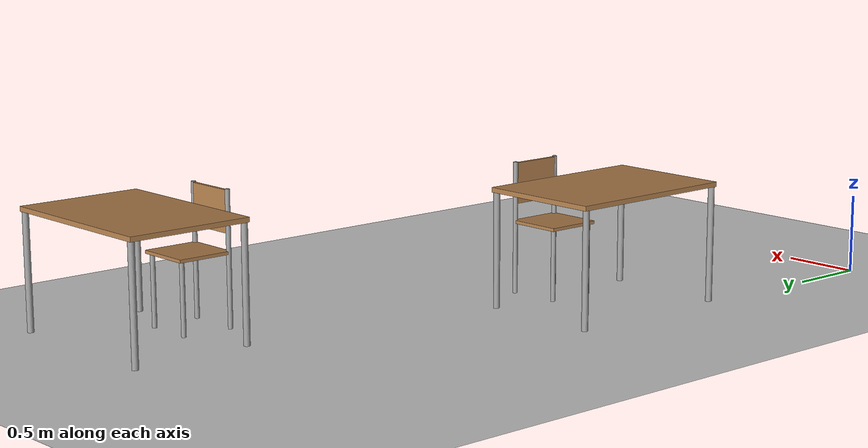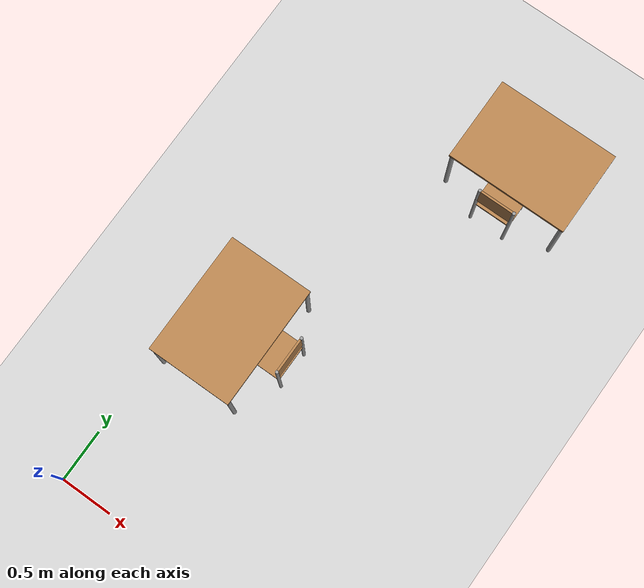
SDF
<sdf version="1.7">
 <world name="default">
  <model name="ground_plane">
   <static>1</static>
   <link name="link">
    <collision name="collision">
     <geometry><plane><normal>0 0 1</normal><size>100 100</size></plane></geometry>
     <surface>
      <contact><collide_bitmask>65535</collide_bitmask></contact>
      <friction><ode><mu>100</mu><mu2>50</mu2></ode></friction>
     </surface>
    </collision>
    <visual name="visual">
     <cast_shadows>0</cast_shadows>
     <geometry><plane><normal>0 0 1</normal><size>100 100</size></plane></geometry>
     <material>
      <script><uri>file://media/materials/scripts/gazebo.material</uri><name>Gazebo/Grey</name></script>
     </material>
    </visual>
   </link>
  </model>
  <model name="table_mod_clone">
   <link name="link">
    <inertial>
     <mass>1</mass>
     <inertia><ixx>1</ixx><ixy>0</ixy><ixz>0</ixz><iyy>1</iyy><iyz>0</iyz><izz>1</izz></inertia>
    </inertial>
    <visual name="visual1">
     <pose>0 0 0.87 0 -0 0</pose>
     <geometry><box><size>1.15 0.8 0.03</size></box></geometry>
     <material>
      <script><uri>file://media/materials/scripts/gazebo.material</uri><name>Gazebo/Wood</name></script>
      <shader type="pixel"><normal_map>__default__</normal_map></shader>
      <ambient>1 1 1 1</ambient>
      <diffuse>1 1 1 1</diffuse>
      <specular>0.2 0.2 0.2 1</specular>
      <emissive>0 0 0 1</emissive>
     </material>
    </visual>
    <visual name="back_right_leg">
     <pose>-0.55 -0.38 0.5 0 -0 0</pose>
     <geometry><cylinder><radius>0.02</radius><length>0.75</length></cylinder></geometry>
     <material>
      <script><uri>file://media/materials/scripts/gazebo.material</uri><name>Gazebo/Grey</name></script>
      <shader type="pixel"><normal_map>__default__</normal_map></shader>
      <ambient>0.3 0.3 0.3 1</ambient>
      <diffuse>0.7 0.7 0.7 1</diffuse>
      <specular>0.01 0.01 0.01 1</specular>
      <emissive>0 0 0 1</emissive>
     </material>
    </visual>
    <visual name="front_right_leg">
     <pose>0.55 -0.38 0.5 0 -0 0</pose>
     <geometry><cylinder><radius>0.02</radius><length>0.75</length></cylinder></geometry>
     <material>
      <script><uri>file://media/materials/scripts/gazebo.material</uri><name>Gazebo/Grey</name></script>
      <shader type="pixel"><normal_map>__default__</normal_map></shader>
      <ambient>0.3 0.3 0.3 1</ambient>
      <diffuse>0.7 0.7 0.7 1</diffuse>
      <specular>0.01 0.01 0.01 1</specular>
      <emissive>0 0 0 1</emissive>
     </material>
    </visual>
    <visual name="back_left_leg">
     <pose>-0.55 0.38 0.5 0 -0 0</pose>
     <geometry><cylinder><radius>0.02</radius><length>0.75</length></cylinder></geometry>
     <material>
      <script><uri>file://media/materials/scripts/gazebo.material</uri><name>Gazebo/Grey</name></script>
      <shader type="pixel"><normal_map>__default__</normal_map></shader>
      <ambient>0.3 0.3 0.3 1</ambient>
      <diffuse>0.7 0.7 0.7 1</diffuse>
      <specular>0.01 0.01 0.01 1</specular>
      <emissive>0 0 0 1</emissive>
     </material>
    </visual>
    <visual name="front_left_leg">
     <pose>0.55 0.38 0.5 0 -0 0</pose>
     <geometry><cylinder><radius>0.02</radius><length>0.75</length></cylinder></geometry>
     <material>
      <script><uri>file://media/materials/scripts/gazebo.material</uri><name>Gazebo/Grey</name></script>
      <shader type="pixel"><normal_map>__default__</normal_map></shader>
      <ambient>0.3 0.3 0.3 1</ambient>
      <diffuse>0.7 0.7 0.7 1</diffuse>
      <specular>0.01 0.01 0.01 1</specular>
      <emissive>0 0 0 1</emissive>
     </material>
    </visual>
    <collision name="surface">
     <pose>0 0 0.87 0 -0 0</pose>
     <geometry><box><size>1.15 0.8 0.03</size></box></geometry>
     <surface>
      <friction>
       <ode><mu>0.6</mu><mu2>0.6</mu2><fdir1>0 0 0</fdir1><slip1>0</slip1><slip2>0</slip2></ode>
       <torsional>
        <coefficient>1</coefficient>
        <patch_radius>0</patch_radius>
        <surface_radius>0</surface_radius>
        <use_patch_radius>1</use_patch_radius>
        <ode><slip>0</slip></ode>
       </torsional>
      </friction>
      <bounce><restitution_coefficient>0</restitution_coefficient><threshold>1e+06</threshold></bounce>
      <contact>
       <collide_without_contact>0</collide_without_contact>
       <collide_without_contact_bitmask>1</collide_without_contact_bitmask>
       <collide_bitmask>1</collide_bitmask>
       <ode>
        <soft_cfm>0</soft_cfm>
        <soft_erp>0.2</soft_erp>
        <kp>1e+13</kp>
        <kd>1</kd>
        <max_vel>0.01</max_vel>
        <min_depth>0</min_depth>
       </ode>
       <bullet>
        <split_impulse>1</split_impulse>
        <split_impulse_penetration_threshold>-0.01</split_impulse_penetration_threshold>
        <soft_cfm>0</soft_cfm>
        <soft_erp>0.2</soft_erp>
        <kp>1e+13</kp>
        <kd>1</kd>
       </bullet>
      </contact>
     </surface>
    </collision>
    <collision name="back_right_leg">
     <pose>-0.55 -0.38 0.5 0 -0 0</pose>
     <geometry><cylinder><radius>0.02</radius><length>0.75</length></cylinder></geometry>
     <surface>
      <friction>
       <ode><mu>1</mu><mu2>1</mu2><fdir1>0 0 0</fdir1><slip1>0</slip1><slip2>0</slip2></ode>
       <torsional>
        <coefficient>1</coefficient>
        <patch_radius>0</patch_radius>
        <surface_radius>0</surface_radius>
        <use_patch_radius>1</use_patch_radius>
        <ode><slip>0</slip></ode>
       </torsional>
      </friction>
      <bounce><restitution_coefficient>0</restitution_coefficient><threshold>1e+06</threshold></bounce>
      <contact>
       <collide_without_contact>0</collide_without_contact>
       <collide_without_contact_bitmask>1</collide_without_contact_bitmask>
       <collide_bitmask>1</collide_bitmask>
       <ode>
        <soft_cfm>0</soft_cfm>
        <soft_erp>0.2</soft_erp>
        <kp>1e+13</kp>
        <kd>1</kd>
        <max_vel>0.01</max_vel>
        <min_depth>0</min_depth>
       </ode>
       <bullet>
        <split_impulse>1</split_impulse>
        <split_impulse_penetration_threshold>-0.01</split_impulse_penetration_threshold>
        <soft_cfm>0</soft_cfm>
        <soft_erp>0.2</soft_erp>
        <kp>1e+13</kp>
        <kd>1</kd>
       </bullet>
      </contact>
     </surface>
    </collision>
    <collision name="back_left_leg">
     <pose>-0.55 0.38 0.5 0 -0 0</pose>
     <geometry><cylinder><radius>0.02</radius><length>0.75</length></cylinder></geometry>
     <surface>
      <friction>
       <ode><mu>1</mu><mu2>1</mu2><fdir1>0 0 0</fdir1><slip1>0</slip1><slip2>0</slip2></ode>
       <torsional>
        <coefficient>1</coefficient>
        <patch_radius>0</patch_radius>
        <surface_radius>0</surface_radius>
        <use_patch_radius>1</use_patch_radius>
        <ode><slip>0</slip></ode>
       </torsional>
      </friction>
      <bounce><restitution_coefficient>0</restitution_coefficient><threshold>1e+06</threshold></bounce>
      <contact>
       <collide_without_contact>0</collide_without_contact>
       <collide_without_contact_bitmask>1</collide_without_contact_bitmask>
       <collide_bitmask>1</collide_bitmask>
       <ode>
        <soft_cfm>0</soft_cfm>
        <soft_erp>0.2</soft_erp>
        <kp>1e+13</kp>
        <kd>1</kd>
        <max_vel>0.01</max_vel>
        <min_depth>0</min_depth>
       </ode>
       <bullet>
        <split_impulse>1</split_impulse>
        <split_impulse_penetration_threshold>-0.01</split_impulse_penetration_threshold>
        <soft_cfm>0</soft_cfm>
        <soft_erp>0.2</soft_erp>
        <kp>1e+13</kp>
        <kd>1</kd>
       </bullet>
      </contact>
     </surface>
    </collision>
    <collision name="front_left_leg">
     <pose>0.55 0.38 0.5 0 -0 0</pose>
     <geometry><cylinder><radius>0.02</radius><length>0.75</length></cylinder></geometry>
     <surface>
      <friction>
       <ode><mu>1</mu><mu2>1</mu2><fdir1>0 0 0</fdir1><slip1>0</slip1><slip2>0</slip2></ode>
       <torsional>
        <coefficient>1</coefficient>
        <patch_radius>0</patch_radius>
        <surface_radius>0</surface_radius>
        <use_patch_radius>1</use_patch_radius>
        <ode><slip>0</slip></ode>
       </torsional>
      </friction>
      <bounce><restitution_coefficient>0</restitution_coefficient><threshold>1e+06</threshold></bounce>
      <contact>
       <collide_without_contact>0</collide_without_contact>
       <collide_without_contact_bitmask>1</collide_without_contact_bitmask>
       <collide_bitmask>1</collide_bitmask>
       <ode>
        <soft_cfm>0</soft_cfm>
        <soft_erp>0.2</soft_erp>
        <kp>1e+13</kp>
        <kd>1</kd>
        <max_vel>0.01</max_vel>
        <min_depth>0</min_depth>
       </ode>
       <bullet>
        <split_impulse>1</split_impulse>
        <split_impulse_penetration_threshold>-0.01</split_impulse_penetration_threshold>
        <soft_cfm>0</soft_cfm>
        <soft_erp>0.2</soft_erp>
        <kp>1e+13</kp>
        <kd>1</kd>
       </bullet>
      </contact>
     </surface>
    </collision>
    <collision name="front_right_leg">
     <pose>0.55 -0.38 0.5 0 -0 0</pose>
     <geometry><cylinder><radius>0.02</radius><length>0.75</length></cylinder></geometry>
     <surface>
      <friction>
       <ode><mu>1</mu><mu2>1</mu2><fdir1>0 0 0</fdir1><slip1>0</slip1><slip2>0</slip2></ode>
       <torsional>
        <coefficient>1</coefficient>
        <patch_radius>0</patch_radius>
        <surface_radius>0</surface_radius>
        <use_patch_radius>1</use_patch_radius>
        <ode><slip>0</slip></ode>
       </torsional>
      </friction>
      <bounce><restitution_coefficient>0</restitution_coefficient><threshold>1e+06</threshold></bounce>
      <contact>
       <collide_without_contact>0</collide_without_contact>
       <collide_without_contact_bitmask>1</collide_without_contact_bitmask>
       <collide_bitmask>1</collide_bitmask>
       <ode>
        <soft_cfm>0</soft_cfm>
        <soft_erp>0.2</soft_erp>
        <kp>1e+13</kp>
        <kd>1</kd>
        <max_vel>0.01</max_vel>
        <min_depth>0</min_depth>
       </ode>
       <bullet>
        <split_impulse>1</split_impulse>
        <split_impulse_penetration_threshold>-0.01</split_impulse_penetration_threshold>
        <soft_cfm>0</soft_cfm>
        <soft_erp>0.2</soft_erp>
        <kp>1e+13</kp>
        <kd>1</kd>
       </bullet>
      </contact>
     </surface>
    </collision>
   </link>
   <static>1</static>
   <pose>0.469024 1.86683 -0.134214 0 0 -1.5708</pose>
  </model>
  <model name="table_mod_clone_0">
   <link name="link">
    <inertial>
     <mass>1</mass>
     <inertia><ixx>1</ixx><ixy>0</ixy><ixz>0</ixz><iyy>1</iyy><iyz>0</iyz><izz>1</izz></inertia>
    </inertial>
    <visual name="visual1">
     <pose>0 0 0.87 0 -0 0</pose>
     <geometry><box><size>1.15 0.8 0.03</size></box></geometry>
     <material>
      <script><uri>file://media/materials/scripts/gazebo.material</uri><name>Gazebo/Wood</name></script>
      <shader type="pixel"><normal_map>__default__</normal_map></shader>
      <ambient>1 1 1 1</ambient>
      <diffuse>1 1 1 1</diffuse>
      <specular>0.2 0.2 0.2 1</specular>
      <emissive>0 0 0 1</emissive>
     </material>
    </visual>
    <visual name="back_right_leg">
     <pose>-0.55 -0.38 0.5 0 -0 0</pose>
     <geometry><cylinder><radius>0.02</radius><length>0.75</length></cylinder></geometry>
     <material>
      <script><uri>file://media/materials/scripts/gazebo.material</uri><name>Gazebo/Grey</name></script>
      <shader type="pixel"><normal_map>__default__</normal_map></shader>
      <ambient>0.3 0.3 0.3 1</ambient>
      <diffuse>0.7 0.7 0.7 1</diffuse>
      <specular>0.01 0.01 0.01 1</specular>
      <emissive>0 0 0 1</emissive>
     </material>
    </visual>
    <visual name="front_right_leg">
     <pose>0.55 -0.38 0.5 0 -0 0</pose>
     <geometry><cylinder><radius>0.02</radius><length>0.75</length></cylinder></geometry>
     <material>
      <script><uri>file://media/materials/scripts/gazebo.material</uri><name>Gazebo/Grey</name></script>
      <shader type="pixel"><normal_map>__default__</normal_map></shader>
      <ambient>0.3 0.3 0.3 1</ambient>
      <diffuse>0.7 0.7 0.7 1</diffuse>
      <specular>0.01 0.01 0.01 1</specular>
      <emissive>0 0 0 1</emissive>
     </material>
    </visual>
    <visual name="back_left_leg">
     <pose>-0.55 0.38 0.5 0 -0 0</pose>
     <geometry><cylinder><radius>0.02</radius><length>0.75</length></cylinder></geometry>
     <material>
      <script><uri>file://media/materials/scripts/gazebo.material</uri><name>Gazebo/Grey</name></script>
      <shader type="pixel"><normal_map>__default__</normal_map></shader>
      <ambient>0.3 0.3 0.3 1</ambient>
      <diffuse>0.7 0.7 0.7 1</diffuse>
      <specular>0.01 0.01 0.01 1</specular>
      <emissive>0 0 0 1</emissive>
     </material>
    </visual>
    <visual name="front_left_leg">
     <pose>0.55 0.38 0.5 0 -0 0</pose>
     <geometry><cylinder><radius>0.02</radius><length>0.75</length></cylinder></geometry>
     <material>
      <script><uri>file://media/materials/scripts/gazebo.material</uri><name>Gazebo/Grey</name></script>
      <shader type="pixel"><normal_map>__default__</normal_map></shader>
      <ambient>0.3 0.3 0.3 1</ambient>
      <diffuse>0.7 0.7 0.7 1</diffuse>
      <specular>0.01 0.01 0.01 1</specular>
      <emissive>0 0 0 1</emissive>
     </material>
    </visual>
    <collision name="surface">
     <pose>0 0 0.87 0 -0 0</pose>
     <geometry><box><size>1.15 0.8 0.03</size></box></geometry>
     <surface>
      <friction>
       <ode><mu>0.6</mu><mu2>0.6</mu2><fdir1>0 0 0</fdir1><slip1>0</slip1><slip2>0</slip2></ode>
       <torsional>
        <coefficient>1</coefficient>
        <patch_radius>0</patch_radius>
        <surface_radius>0</surface_radius>
        <use_patch_radius>1</use_patch_radius>
        <ode><slip>0</slip></ode>
       </torsional>
      </friction>
      <bounce><restitution_coefficient>0</restitution_coefficient><threshold>1e+06</threshold></bounce>
      <contact>
       <collide_without_contact>0</collide_without_contact>
       <collide_without_contact_bitmask>1</collide_without_contact_bitmask>
       <collide_bitmask>1</collide_bitmask>
       <ode>
        <soft_cfm>0</soft_cfm>
        <soft_erp>0.2</soft_erp>
        <kp>1e+13</kp>
        <kd>1</kd>
        <max_vel>0.01</max_vel>
        <min_depth>0</min_depth>
       </ode>
       <bullet>
        <split_impulse>1</split_impulse>
        <split_impulse_penetration_threshold>-0.01</split_impulse_penetration_threshold>
        <soft_cfm>0</soft_cfm>
        <soft_erp>0.2</soft_erp>
        <kp>1e+13</kp>
        <kd>1</kd>
       </bullet>
      </contact>
     </surface>
    </collision>
    <collision name="back_right_leg">
     <pose>-0.55 -0.38 0.5 0 -0 0</pose>
     <geometry><cylinder><radius>0.02</radius><length>0.75</length></cylinder></geometry>
     <surface>
      <friction>
       <ode><mu>1</mu><mu2>1</mu2><fdir1>0 0 0</fdir1><slip1>0</slip1><slip2>0</slip2></ode>
       <torsional>
        <coefficient>1</coefficient>
        <patch_radius>0</patch_radius>
        <surface_radius>0</surface_radius>
        <use_patch_radius>1</use_patch_radius>
        <ode><slip>0</slip></ode>
       </torsional>
      </friction>
      <bounce><restitution_coefficient>0</restitution_coefficient><threshold>1e+06</threshold></bounce>
      <contact>
       <collide_without_contact>0</collide_without_contact>
       <collide_without_contact_bitmask>1</collide_without_contact_bitmask>
       <collide_bitmask>1</collide_bitmask>
       <ode>
        <soft_cfm>0</soft_cfm>
        <soft_erp>0.2</soft_erp>
        <kp>1e+13</kp>
        <kd>1</kd>
        <max_vel>0.01</max_vel>
        <min_depth>0</min_depth>
       </ode>
       <bullet>
        <split_impulse>1</split_impulse>
        <split_impulse_penetration_threshold>-0.01</split_impulse_penetration_threshold>
        <soft_cfm>0</soft_cfm>
        <soft_erp>0.2</soft_erp>
        <kp>1e+13</kp>
        <kd>1</kd>
       </bullet>
      </contact>
     </surface>
    </collision>
    <collision name="back_left_leg">
     <pose>-0.55 0.38 0.5 0 -0 0</pose>
     <geometry><cylinder><radius>0.02</radius><length>0.75</length></cylinder></geometry>
     <surface>
      <friction>
       <ode><mu>1</mu><mu2>1</mu2><fdir1>0 0 0</fdir1><slip1>0</slip1><slip2>0</slip2></ode>
       <torsional>
        <coefficient>1</coefficient>
        <patch_radius>0</patch_radius>
        <surface_radius>0</surface_radius>
        <use_patch_radius>1</use_patch_radius>
        <ode><slip>0</slip></ode>
       </torsional>
      </friction>
      <bounce><restitution_coefficient>0</restitution_coefficient><threshold>1e+06</threshold></bounce>
      <contact>
       <collide_without_contact>0</collide_without_contact>
       <collide_without_contact_bitmask>1</collide_without_contact_bitmask>
       <collide_bitmask>1</collide_bitmask>
       <ode>
        <soft_cfm>0</soft_cfm>
        <soft_erp>0.2</soft_erp>
        <kp>1e+13</kp>
        <kd>1</kd>
        <max_vel>0.01</max_vel>
        <min_depth>0</min_depth>
       </ode>
       <bullet>
        <split_impulse>1</split_impulse>
        <split_impulse_penetration_threshold>-0.01</split_impulse_penetration_threshold>
        <soft_cfm>0</soft_cfm>
        <soft_erp>0.2</soft_erp>
        <kp>1e+13</kp>
        <kd>1</kd>
       </bullet>
      </contact>
     </surface>
    </collision>
    <collision name="front_left_leg">
     <pose>0.55 0.38 0.5 0 -0 0</pose>
     <geometry><cylinder><radius>0.02</radius><length>0.75</length></cylinder></geometry>
     <surface>
      <friction>
       <ode><mu>1</mu><mu2>1</mu2><fdir1>0 0 0</fdir1><slip1>0</slip1><slip2>0</slip2></ode>
       <torsional>
        <coefficient>1</coefficient>
        <patch_radius>0</patch_radius>
        <surface_radius>0</surface_radius>
        <use_patch_radius>1</use_patch_radius>
        <ode><slip>0</slip></ode>
       </torsional>
      </friction>
      <bounce><restitution_coefficient>0</restitution_coefficient><threshold>1e+06</threshold></bounce>
      <contact>
       <collide_without_contact>0</collide_without_contact>
       <collide_without_contact_bitmask>1</collide_without_contact_bitmask>
       <collide_bitmask>1</collide_bitmask>
       <ode>
        <soft_cfm>0</soft_cfm>
        <soft_erp>0.2</soft_erp>
        <kp>1e+13</kp>
        <kd>1</kd>
        <max_vel>0.01</max_vel>
        <min_depth>0</min_depth>
       </ode>
       <bullet>
        <split_impulse>1</split_impulse>
        <split_impulse_penetration_threshold>-0.01</split_impulse_penetration_threshold>
        <soft_cfm>0</soft_cfm>
        <soft_erp>0.2</soft_erp>
        <kp>1e+13</kp>
        <kd>1</kd>
       </bullet>
      </contact>
     </surface>
    </collision>
    <collision name="front_right_leg">
     <pose>0.55 -0.38 0.5 0 -0 0</pose>
     <geometry><cylinder><radius>0.02</radius><length>0.75</length></cylinder></geometry>
     <surface>
      <friction>
       <ode><mu>1</mu><mu2>1</mu2><fdir1>0 0 0</fdir1><slip1>0</slip1><slip2>0</slip2></ode>
       <torsional>
        <coefficient>1</coefficient>
        <patch_radius>0</patch_radius>
        <surface_radius>0</surface_radius>
        <use_patch_radius>1</use_patch_radius>
        <ode><slip>0</slip></ode>
       </torsional>
      </friction>
      <bounce><restitution_coefficient>0</restitution_coefficient><threshold>1e+06</threshold></bounce>
      <contact>
       <collide_without_contact>0</collide_without_contact>
       <collide_without_contact_bitmask>1</collide_without_contact_bitmask>
       <collide_bitmask>1</collide_bitmask>
       <ode>
        <soft_cfm>0</soft_cfm>
        <soft_erp>0.2</soft_erp>
        <kp>1e+13</kp>
        <kd>1</kd>
        <max_vel>0.01</max_vel>
        <min_depth>0</min_depth>
       </ode>
       <bullet>
        <split_impulse>1</split_impulse>
        <split_impulse_penetration_threshold>-0.01</split_impulse_penetration_threshold>
        <soft_cfm>0</soft_cfm>
        <soft_erp>0.2</soft_erp>
        <kp>1e+13</kp>
        <kd>1</kd>
       </bullet>
      </contact>
     </surface>
    </collision>
   </link>
   <static>1</static>
   <pose>1.7084 4.46917 -0.134214 0 0 -4e-06</pose>
  </model>
  <model name="chair_mod_0">
   <link name="link">
    <inertial>
     <mass>1</mass>
     <inertia><ixx>1</ixx><ixy>0</ixy><ixz>0</ixz><iyy>1</iyy><iyz>0</iyz><izz>1</izz></inertia>
    </inertial>
    <visual name="back_right_leg">
     <pose>-0.17 -0.17 0.42 0 -0 0</pose>
     <geometry><cylinder><radius>0.015</radius><length>0.84</length></cylinder></geometry>
     <material>
      <script><uri>file://media/materials/scripts/gazebo.material</uri><name>Gazebo/Grey</name></script>
      <shader type="pixel"><normal_map>__default__</normal_map></shader>
      <ambient>0.3 0.3 0.3 1</ambient>
      <diffuse>0.7 0.7 0.7 1</diffuse>
      <specular>0.01 0.01 0.01 1</specular>
      <emissive>0 0 0 1</emissive>
     </material>
    </visual>
    <visual name="back_left_leg">
     <pose>-0.15 0.15 0.23 0 -0 0</pose>
     <geometry><cylinder><radius>0.015</radius><length>0.46</length></cylinder></geometry>
     <material>
      <script><uri>file://media/materials/scripts/gazebo.material</uri><name>Gazebo/Grey</name></script>
      <shader type="pixel"><normal_map>__default__</normal_map></shader>
      <ambient>0.3 0.3 0.3 1</ambient>
      <diffuse>0.7 0.7 0.7 1</diffuse>
      <specular>0.01 0.01 0.01 1</specular>
      <emissive>0 0 0 1</emissive>
     </material>
    </visual>
    <visual name="visual1">
     <pose>0 0 0.46 0 -0 0</pose>
     <geometry><box><size>0.36 0.36 0.02</size></box></geometry>
     <material>
      <script><uri>file://media/materials/scripts/gazebo.material</uri><name>Gazebo/Wood</name></script>
      <shader type="pixel"><normal_map>__default__</normal_map></shader>
      <ambient>1 1 1 1</ambient>
      <diffuse>1 1 1 1</diffuse>
      <specular>0.2 0.2 0.2 1</specular>
      <emissive>0 0 0 1</emissive>
     </material>
    </visual>
    <visual name="ModelPreview_1::link::visual_5">
     <pose>0 -0.17 0.705 1.56 -0 0</pose>
     <geometry><box><size>0.36 0.26 0.02</size></box></geometry>
     <material>
      <script><uri>file://media/materials/scripts/gazebo.material</uri><name>Gazebo/Wood</name></script>
      <shader type="pixel"><normal_map>__default__</normal_map></shader>
      <ambient>1 1 1 1</ambient>
      <diffuse>1 1 1 1</diffuse>
      <specular>0.2 0.2 0.2 1</specular>
      <emissive>0 0 0 1</emissive>
     </material>
    </visual>
    <visual name="front_left_leg">
     <pose>0.15 0.15 0.23 0 -0 0</pose>
     <geometry><cylinder><radius>0.015</radius><length>0.46</length></cylinder></geometry>
     <material>
      <script><uri>file://media/materials/scripts/gazebo.material</uri><name>Gazebo/Grey</name></script>
      <shader type="pixel"><normal_map>__default__</normal_map></shader>
      <ambient>0.3 0.3 0.3 1</ambient>
      <diffuse>0.7 0.7 0.7 1</diffuse>
      <specular>0.01 0.01 0.01 1</specular>
      <emissive>0 0 0 1</emissive>
     </material>
    </visual>
    <visual name="front_right_leg">
     <pose>0.17 -0.17 0.42 0 -0 0</pose>
     <geometry><cylinder><radius>0.015</radius><length>0.84</length></cylinder></geometry>
     <material>
      <script><uri>file://media/materials/scripts/gazebo.material</uri><name>Gazebo/Grey</name></script>
      <shader type="pixel"><normal_map>__default__</normal_map></shader>
      <ambient>0.3 0.3 0.3 1</ambient>
      <diffuse>0.7 0.7 0.7 1</diffuse>
      <specular>0.01 0.01 0.01 1</specular>
      <emissive>0 0 0 1</emissive>
     </material>
    </visual>
    <collision name="front_right_leg">
     <pose>0.17 -0.17 0.42 0 -0 0</pose>
     <geometry><cylinder><radius>0.015</radius><length>0.84</length></cylinder></geometry>
     <surface>
      <friction>
       <ode><mu>1</mu><mu2>1</mu2><fdir1>0 0 0</fdir1><slip1>0</slip1><slip2>0</slip2></ode>
       <torsional>
        <coefficient>1</coefficient>
        <patch_radius>0</patch_radius>
        <surface_radius>0</surface_radius>
        <use_patch_radius>1</use_patch_radius>
        <ode><slip>0</slip></ode>
       </torsional>
      </friction>
      <bounce><restitution_coefficient>0</restitution_coefficient><threshold>1e+06</threshold></bounce>
      <contact>
       <collide_without_contact>0</collide_without_contact>
       <collide_without_contact_bitmask>1</collide_without_contact_bitmask>
       <collide_bitmask>1</collide_bitmask>
       <ode>
        <soft_cfm>0</soft_cfm>
        <soft_erp>0.2</soft_erp>
        <kp>1e+13</kp>
        <kd>1</kd>
        <max_vel>0.01</max_vel>
        <min_depth>0</min_depth>
       </ode>
       <bullet>
        <split_impulse>1</split_impulse>
        <split_impulse_penetration_threshold>-0.01</split_impulse_penetration_threshold>
        <soft_cfm>0</soft_cfm>
        <soft_erp>0.2</soft_erp>
        <kp>1e+13</kp>
        <kd>1</kd>
       </bullet>
      </contact>
     </surface>
    </collision>
    <collision name="back_right_leg">
     <pose>-0.17 -0.17 0.42 0 -0 0</pose>
     <geometry><cylinder><radius>0.015</radius><length>0.84</length></cylinder></geometry>
     <surface>
      <friction>
       <ode><mu>1</mu><mu2>1</mu2><fdir1>0 0 0</fdir1><slip1>0</slip1><slip2>0</slip2></ode>
       <torsional>
        <coefficient>1</coefficient>
        <patch_radius>0</patch_radius>
        <surface_radius>0</surface_radius>
        <use_patch_radius>1</use_patch_radius>
        <ode><slip>0</slip></ode>
       </torsional>
      </friction>
      <bounce><restitution_coefficient>0</restitution_coefficient><threshold>1e+06</threshold></bounce>
      <contact>
       <collide_without_contact>0</collide_without_contact>
       <collide_without_contact_bitmask>1</collide_without_contact_bitmask>
       <collide_bitmask>1</collide_bitmask>
       <ode>
        <soft_cfm>0</soft_cfm>
        <soft_erp>0.2</soft_erp>
        <kp>1e+13</kp>
        <kd>1</kd>
        <max_vel>0.01</max_vel>
        <min_depth>0</min_depth>
       </ode>
       <bullet>
        <split_impulse>1</split_impulse>
        <split_impulse_penetration_threshold>-0.01</split_impulse_penetration_threshold>
        <soft_cfm>0</soft_cfm>
        <soft_erp>0.2</soft_erp>
        <kp>1e+13</kp>
        <kd>1</kd>
       </bullet>
      </contact>
     </surface>
    </collision>
    <collision name="back_left_leg">
     <pose>-0.15 0.15 0.23 0 -0 0</pose>
     <geometry><cylinder><radius>0.015</radius><length>0.46</length></cylinder></geometry>
     <surface>
      <friction>
       <ode><mu>1</mu><mu2>1</mu2><fdir1>0 0 0</fdir1><slip1>0</slip1><slip2>0</slip2></ode>
       <torsional>
        <coefficient>1</coefficient>
        <patch_radius>0</patch_radius>
        <surface_radius>0</surface_radius>
        <use_patch_radius>1</use_patch_radius>
        <ode><slip>0</slip></ode>
       </torsional>
      </friction>
      <bounce><restitution_coefficient>0</restitution_coefficient><threshold>1e+06</threshold></bounce>
      <contact>
       <collide_without_contact>0</collide_without_contact>
       <collide_without_contact_bitmask>1</collide_without_contact_bitmask>
       <collide_bitmask>1</collide_bitmask>
       <ode>
        <soft_cfm>0</soft_cfm>
        <soft_erp>0.2</soft_erp>
        <kp>1e+13</kp>
        <kd>1</kd>
        <max_vel>0.01</max_vel>
        <min_depth>0</min_depth>
       </ode>
       <bullet>
        <split_impulse>1</split_impulse>
        <split_impulse_penetration_threshold>-0.01</split_impulse_penetration_threshold>
        <soft_cfm>0</soft_cfm>
        <soft_erp>0.2</soft_erp>
        <kp>1e+13</kp>
        <kd>1</kd>
       </bullet>
      </contact>
     </surface>
    </collision>
    <collision name="collision_6">
     <pose>0 -0.17 0.705 1.56 -0 0</pose>
     <geometry><box><size>0.36 0.26 0.03</size></box></geometry>
     <surface>
      <friction>
       <ode><mu>1</mu><mu2>1</mu2><fdir1>0 0 0</fdir1><slip1>0</slip1><slip2>0</slip2></ode>
       <torsional>
        <coefficient>1</coefficient>
        <patch_radius>0</patch_radius>
        <surface_radius>0</surface_radius>
        <use_patch_radius>1</use_patch_radius>
        <ode><slip>0</slip></ode>
       </torsional>
      </friction>
      <bounce><restitution_coefficient>0</restitution_coefficient><threshold>1e+06</threshold></bounce>
      <contact>
       <collide_without_contact>0</collide_without_contact>
       <collide_without_contact_bitmask>1</collide_without_contact_bitmask>
       <collide_bitmask>1</collide_bitmask>
       <ode>
        <soft_cfm>0</soft_cfm>
        <soft_erp>0.2</soft_erp>
        <kp>1e+13</kp>
        <kd>1</kd>
        <max_vel>0.01</max_vel>
        <min_depth>0</min_depth>
       </ode>
       <bullet>
        <split_impulse>1</split_impulse>
        <split_impulse_penetration_threshold>-0.01</split_impulse_penetration_threshold>
        <soft_cfm>0</soft_cfm>
        <soft_erp>0.2</soft_erp>
        <kp>1e+13</kp>
        <kd>1</kd>
       </bullet>
      </contact>
     </surface>
    </collision>
    <collision name="surface">
     <pose>0 0 0.46 0 -0 0</pose>
     <geometry><box><size>0.36 0.36 0.03</size></box></geometry>
     <surface>
      <friction>
       <ode><mu>0.6</mu><mu2>0.6</mu2><fdir1>0 0 0</fdir1><slip1>0</slip1><slip2>0</slip2></ode>
       <torsional>
        <coefficient>1</coefficient>
        <patch_radius>0</patch_radius>
        <surface_radius>0</surface_radius>
        <use_patch_radius>1</use_patch_radius>
        <ode><slip>0</slip></ode>
       </torsional>
      </friction>
      <bounce><restitution_coefficient>0</restitution_coefficient><threshold>1e+06</threshold></bounce>
      <contact>
       <collide_without_contact>0</collide_without_contact>
       <collide_without_contact_bitmask>1</collide_without_contact_bitmask>
       <collide_bitmask>1</collide_bitmask>
       <ode>
        <soft_cfm>0</soft_cfm>
        <soft_erp>0.2</soft_erp>
        <kp>1e+13</kp>
        <kd>1</kd>
        <max_vel>0.01</max_vel>
        <min_depth>0</min_depth>
       </ode>
       <bullet>
        <split_impulse>1</split_impulse>
        <split_impulse_penetration_threshold>-0.01</split_impulse_penetration_threshold>
        <soft_cfm>0</soft_cfm>
        <soft_erp>0.2</soft_erp>
        <kp>1e+13</kp>
        <kd>1</kd>
       </bullet>
      </contact>
     </surface>
    </collision>
    <collision name="front_left_leg">
     <pose>0.15 0.15 0.23 0 -0 0</pose>
     <geometry><cylinder><radius>0.015</radius><length>0.46</length></cylinder></geometry>
     <surface>
      <friction>
       <ode><mu>1</mu><mu2>1</mu2><fdir1>0 0 0</fdir1><slip1>0</slip1><slip2>0</slip2></ode>
       <torsional>
        <coefficient>1</coefficient>
        <patch_radius>0</patch_radius>
        <surface_radius>0</surface_radius>
        <use_patch_radius>1</use_patch_radius>
        <ode><slip>0</slip></ode>
       </torsional>
      </friction>
      <bounce><restitution_coefficient>0</restitution_coefficient><threshold>1e+06</threshold></bounce>
      <contact>
       <collide_without_contact>0</collide_without_contact>
       <collide_without_contact_bitmask>1</collide_without_contact_bitmask>
       <collide_bitmask>1</collide_bitmask>
       <ode>
        <soft_cfm>0</soft_cfm>
        <soft_erp>0.2</soft_erp>
        <kp>1e+13</kp>
        <kd>1</kd>
        <max_vel>0.01</max_vel>
        <min_depth>0</min_depth>
       </ode>
       <bullet>
        <split_impulse>1</split_impulse>
        <split_impulse_penetration_threshold>-0.01</split_impulse_penetration_threshold>
        <soft_cfm>0</soft_cfm>
        <soft_erp>0.2</soft_erp>
        <kp>1e+13</kp>
        <kd>1</kd>
       </bullet>
      </contact>
     </surface>
    </collision>
   </link>
   <static>1</static>
   <pose>0.875233 1.9015 0 0 -0 1.5708</pose>
  </model>
  <model name="chair_mod_0_clone_2">
   <link name="link">
    <inertial>
     <mass>1</mass>
     <inertia><ixx>1</ixx><ixy>0</ixy><ixz>0</ixz><iyy>1</iyy><iyz>0</iyz><izz>1</izz></inertia>
    </inertial>
    <visual name="back_right_leg">
     <pose>-0.17 -0.17 0.42 0 -0 0</pose>
     <geometry><cylinder><radius>0.015</radius><length>0.84</length></cylinder></geometry>
     <material>
      <script><uri>file://media/materials/scripts/gazebo.material</uri><name>Gazebo/Grey</name></script>
      <shader type="pixel"><normal_map>__default__</normal_map></shader>
      <ambient>0.3 0.3 0.3 1</ambient>
      <diffuse>0.7 0.7 0.7 1</diffuse>
      <specular>0.01 0.01 0.01 1</specular>
      <emissive>0 0 0 1</emissive>
     </material>
    </visual>
    <visual name="back_left_leg">
     <pose>-0.15 0.15 0.23 0 -0 0</pose>
     <geometry><cylinder><radius>0.015</radius><length>0.46</length></cylinder></geometry>
     <material>
      <script><uri>file://media/materials/scripts/gazebo.material</uri><name>Gazebo/Grey</name></script>
      <shader type="pixel"><normal_map>__default__</normal_map></shader>
      <ambient>0.3 0.3 0.3 1</ambient>
      <diffuse>0.7 0.7 0.7 1</diffuse>
      <specular>0.01 0.01 0.01 1</specular>
      <emissive>0 0 0 1</emissive>
     </material>
    </visual>
    <visual name="visual1">
     <pose>0 0 0.46 0 -0 0</pose>
     <geometry><box><size>0.36 0.36 0.02</size></box></geometry>
     <material>
      <script><uri>file://media/materials/scripts/gazebo.material</uri><name>Gazebo/Wood</name></script>
      <shader type="pixel"><normal_map>__default__</normal_map></shader>
      <ambient>1 1 1 1</ambient>
      <diffuse>1 1 1 1</diffuse>
      <specular>0.2 0.2 0.2 1</specular>
      <emissive>0 0 0 1</emissive>
     </material>
    </visual>
    <visual name="ModelPreview_1::link::visual_5">
     <pose>0 -0.17 0.705 1.56 -0 0</pose>
     <geometry><box><size>0.36 0.26 0.02</size></box></geometry>
     <material>
      <script><uri>file://media/materials/scripts/gazebo.material</uri><name>Gazebo/Wood</name></script>
      <shader type="pixel"><normal_map>__default__</normal_map></shader>
      <ambient>1 1 1 1</ambient>
      <diffuse>1 1 1 1</diffuse>
      <specular>0.2 0.2 0.2 1</specular>
      <emissive>0 0 0 1</emissive>
     </material>
    </visual>
    <visual name="front_left_leg">
     <pose>0.15 0.15 0.23 0 -0 0</pose>
     <geometry><cylinder><radius>0.015</radius><length>0.46</length></cylinder></geometry>
     <material>
      <script><uri>file://media/materials/scripts/gazebo.material</uri><name>Gazebo/Grey</name></script>
      <shader type="pixel"><normal_map>__default__</normal_map></shader>
      <ambient>0.3 0.3 0.3 1</ambient>
      <diffuse>0.7 0.7 0.7 1</diffuse>
      <specular>0.01 0.01 0.01 1</specular>
      <emissive>0 0 0 1</emissive>
     </material>
    </visual>
    <visual name="front_right_leg">
     <pose>0.17 -0.17 0.42 0 -0 0</pose>
     <geometry><cylinder><radius>0.015</radius><length>0.84</length></cylinder></geometry>
     <material>
      <script><uri>file://media/materials/scripts/gazebo.material</uri><name>Gazebo/Grey</name></script>
      <shader type="pixel"><normal_map>__default__</normal_map></shader>
      <ambient>0.3 0.3 0.3 1</ambient>
      <diffuse>0.7 0.7 0.7 1</diffuse>
      <specular>0.01 0.01 0.01 1</specular>
      <emissive>0 0 0 1</emissive>
     </material>
    </visual>
    <collision name="front_right_leg">
     <pose>0.17 -0.17 0.42 0 -0 0</pose>
     <geometry><cylinder><radius>0.015</radius><length>0.84</length></cylinder></geometry>
     <surface>
      <friction>
       <ode><mu>1</mu><mu2>1</mu2><fdir1>0 0 0</fdir1><slip1>0</slip1><slip2>0</slip2></ode>
       <torsional>
        <coefficient>1</coefficient>
        <patch_radius>0</patch_radius>
        <surface_radius>0</surface_radius>
        <use_patch_radius>1</use_patch_radius>
        <ode><slip>0</slip></ode>
       </torsional>
      </friction>
      <bounce><restitution_coefficient>0</restitution_coefficient><threshold>1e+06</threshold></bounce>
      <contact>
       <collide_without_contact>0</collide_without_contact>
       <collide_without_contact_bitmask>1</collide_without_contact_bitmask>
       <collide_bitmask>1</collide_bitmask>
       <ode>
        <soft_cfm>0</soft_cfm>
        <soft_erp>0.2</soft_erp>
        <kp>1e+13</kp>
        <kd>1</kd>
        <max_vel>0.01</max_vel>
        <min_depth>0</min_depth>
       </ode>
       <bullet>
        <split_impulse>1</split_impulse>
        <split_impulse_penetration_threshold>-0.01</split_impulse_penetration_threshold>
        <soft_cfm>0</soft_cfm>
        <soft_erp>0.2</soft_erp>
        <kp>1e+13</kp>
        <kd>1</kd>
       </bullet>
      </contact>
     </surface>
    </collision>
    <collision name="back_right_leg">
     <pose>-0.17 -0.17 0.42 0 -0 0</pose>
     <geometry><cylinder><radius>0.015</radius><length>0.84</length></cylinder></geometry>
     <surface>
      <friction>
       <ode><mu>1</mu><mu2>1</mu2><fdir1>0 0 0</fdir1><slip1>0</slip1><slip2>0</slip2></ode>
       <torsional>
        <coefficient>1</coefficient>
        <patch_radius>0</patch_radius>
        <surface_radius>0</surface_radius>
        <use_patch_radius>1</use_patch_radius>
        <ode><slip>0</slip></ode>
       </torsional>
      </friction>
      <bounce><restitution_coefficient>0</restitution_coefficient><threshold>1e+06</threshold></bounce>
      <contact>
       <collide_without_contact>0</collide_without_contact>
       <collide_without_contact_bitmask>1</collide_without_contact_bitmask>
       <collide_bitmask>1</collide_bitmask>
       <ode>
        <soft_cfm>0</soft_cfm>
        <soft_erp>0.2</soft_erp>
        <kp>1e+13</kp>
        <kd>1</kd>
        <max_vel>0.01</max_vel>
        <min_depth>0</min_depth>
       </ode>
       <bullet>
        <split_impulse>1</split_impulse>
        <split_impulse_penetration_threshold>-0.01</split_impulse_penetration_threshold>
        <soft_cfm>0</soft_cfm>
        <soft_erp>0.2</soft_erp>
        <kp>1e+13</kp>
        <kd>1</kd>
       </bullet>
      </contact>
     </surface>
    </collision>
    <collision name="back_left_leg">
     <pose>-0.15 0.15 0.23 0 -0 0</pose>
     <geometry><cylinder><radius>0.015</radius><length>0.46</length></cylinder></geometry>
     <surface>
      <friction>
       <ode><mu>1</mu><mu2>1</mu2><fdir1>0 0 0</fdir1><slip1>0</slip1><slip2>0</slip2></ode>
       <torsional>
        <coefficient>1</coefficient>
        <patch_radius>0</patch_radius>
        <surface_radius>0</surface_radius>
        <use_patch_radius>1</use_patch_radius>
        <ode><slip>0</slip></ode>
       </torsional>
      </friction>
      <bounce><restitution_coefficient>0</restitution_coefficient><threshold>1e+06</threshold></bounce>
      <contact>
       <collide_without_contact>0</collide_without_contact>
       <collide_without_contact_bitmask>1</collide_without_contact_bitmask>
       <collide_bitmask>1</collide_bitmask>
       <ode>
        <soft_cfm>0</soft_cfm>
        <soft_erp>0.2</soft_erp>
        <kp>1e+13</kp>
        <kd>1</kd>
        <max_vel>0.01</max_vel>
        <min_depth>0</min_depth>
       </ode>
       <bullet>
        <split_impulse>1</split_impulse>
        <split_impulse_penetration_threshold>-0.01</split_impulse_penetration_threshold>
        <soft_cfm>0</soft_cfm>
        <soft_erp>0.2</soft_erp>
        <kp>1e+13</kp>
        <kd>1</kd>
       </bullet>
      </contact>
     </surface>
    </collision>
    <collision name="collision_6">
     <pose>0 -0.17 0.705 1.56 -0 0</pose>
     <geometry><box><size>0.36 0.26 0.03</size></box></geometry>
     <surface>
      <friction>
       <ode><mu>1</mu><mu2>1</mu2><fdir1>0 0 0</fdir1><slip1>0</slip1><slip2>0</slip2></ode>
       <torsional>
        <coefficient>1</coefficient>
        <patch_radius>0</patch_radius>
        <surface_radius>0</surface_radius>
        <use_patch_radius>1</use_patch_radius>
        <ode><slip>0</slip></ode>
       </torsional>
      </friction>
      <bounce><restitution_coefficient>0</restitution_coefficient><threshold>1e+06</threshold></bounce>
      <contact>
       <collide_without_contact>0</collide_without_contact>
       <collide_without_contact_bitmask>1</collide_without_contact_bitmask>
       <collide_bitmask>1</collide_bitmask>
       <ode>
        <soft_cfm>0</soft_cfm>
        <soft_erp>0.2</soft_erp>
        <kp>1e+13</kp>
        <kd>1</kd>
        <max_vel>0.01</max_vel>
        <min_depth>0</min_depth>
       </ode>
       <bullet>
        <split_impulse>1</split_impulse>
        <split_impulse_penetration_threshold>-0.01</split_impulse_penetration_threshold>
        <soft_cfm>0</soft_cfm>
        <soft_erp>0.2</soft_erp>
        <kp>1e+13</kp>
        <kd>1</kd>
       </bullet>
      </contact>
     </surface>
    </collision>
    <collision name="surface">
     <pose>0 0 0.46 0 -0 0</pose>
     <geometry><box><size>0.36 0.36 0.03</size></box></geometry>
     <surface>
      <friction>
       <ode><mu>0.6</mu><mu2>0.6</mu2><fdir1>0 0 0</fdir1><slip1>0</slip1><slip2>0</slip2></ode>
       <torsional>
        <coefficient>1</coefficient>
        <patch_radius>0</patch_radius>
        <surface_radius>0</surface_radius>
        <use_patch_radius>1</use_patch_radius>
        <ode><slip>0</slip></ode>
       </torsional>
      </friction>
      <bounce><restitution_coefficient>0</restitution_coefficient><threshold>1e+06</threshold></bounce>
      <contact>
       <collide_without_contact>0</collide_without_contact>
       <collide_without_contact_bitmask>1</collide_without_contact_bitmask>
       <collide_bitmask>1</collide_bitmask>
       <ode>
        <soft_cfm>0</soft_cfm>
        <soft_erp>0.2</soft_erp>
        <kp>1e+13</kp>
        <kd>1</kd>
        <max_vel>0.01</max_vel>
        <min_depth>0</min_depth>
       </ode>
       <bullet>
        <split_impulse>1</split_impulse>
        <split_impulse_penetration_threshold>-0.01</split_impulse_penetration_threshold>
        <soft_cfm>0</soft_cfm>
        <soft_erp>0.2</soft_erp>
        <kp>1e+13</kp>
        <kd>1</kd>
       </bullet>
      </contact>
     </surface>
    </collision>
    <collision name="front_left_leg">
     <pose>0.15 0.15 0.23 0 -0 0</pose>
     <geometry><cylinder><radius>0.015</radius><length>0.46</length></cylinder></geometry>
     <surface>
      <friction>
       <ode><mu>1</mu><mu2>1</mu2><fdir1>0 0 0</fdir1><slip1>0</slip1><slip2>0</slip2></ode>
       <torsional>
        <coefficient>1</coefficient>
        <patch_radius>0</patch_radius>
        <surface_radius>0</surface_radius>
        <use_patch_radius>1</use_patch_radius>
        <ode><slip>0</slip></ode>
       </torsional>
      </friction>
      <bounce><restitution_coefficient>0</restitution_coefficient><threshold>1e+06</threshold></bounce>
      <contact>
       <collide_without_contact>0</collide_without_contact>
       <collide_without_contact_bitmask>1</collide_without_contact_bitmask>
       <collide_bitmask>1</collide_bitmask>
       <ode>
        <soft_cfm>0</soft_cfm>
        <soft_erp>0.2</soft_erp>
        <kp>1e+13</kp>
        <kd>1</kd>
        <max_vel>0.01</max_vel>
        <min_depth>0</min_depth>
       </ode>
       <bullet>
        <split_impulse>1</split_impulse>
        <split_impulse_penetration_threshold>-0.01</split_impulse_penetration_threshold>
        <soft_cfm>0</soft_cfm>
        <soft_erp>0.2</soft_erp>
        <kp>1e+13</kp>
        <kd>1</kd>
       </bullet>
      </contact>
     </surface>
    </collision>
   </link>
   <static>1</static>
   <pose>1.69549 4.10748 0 0 -0 4e-06</pose>
  </model>
 </world>
</sdf>
